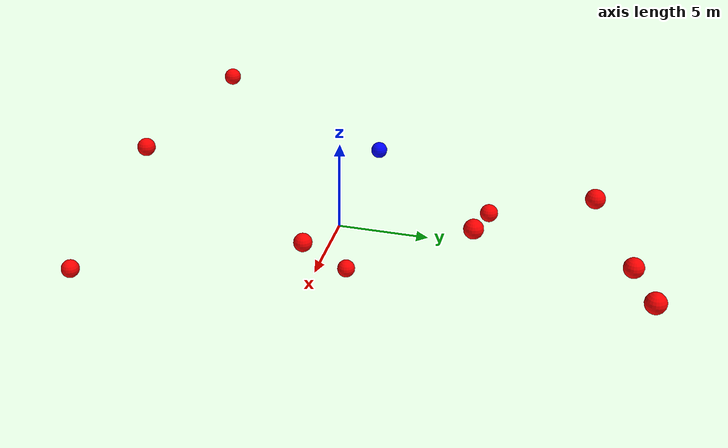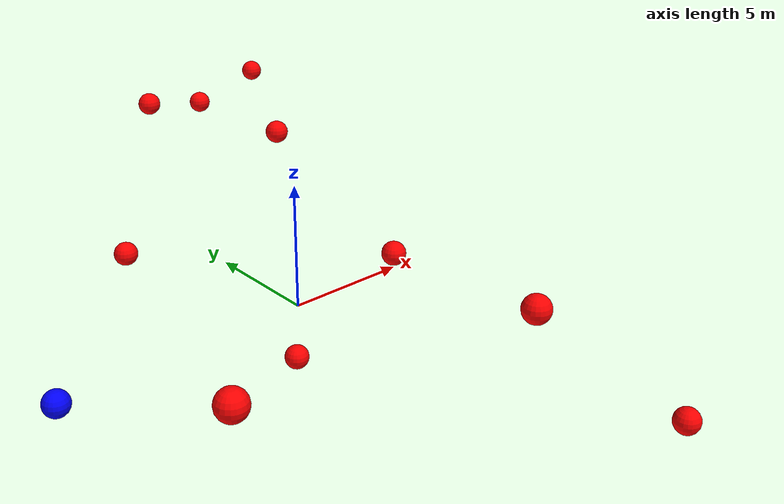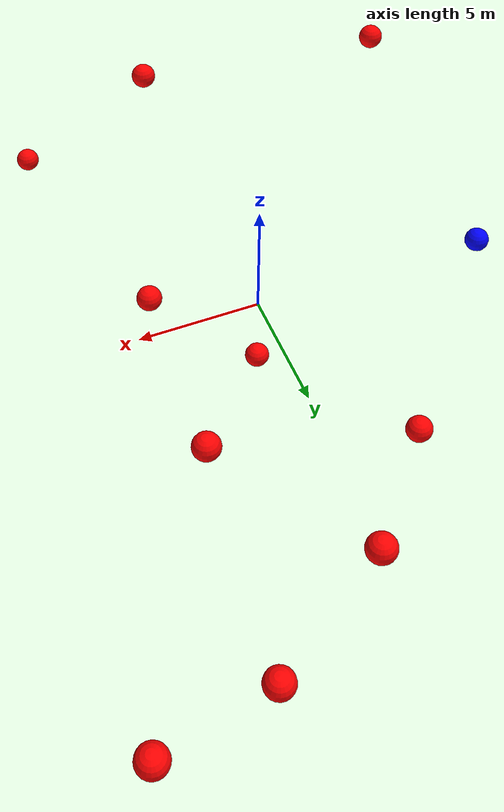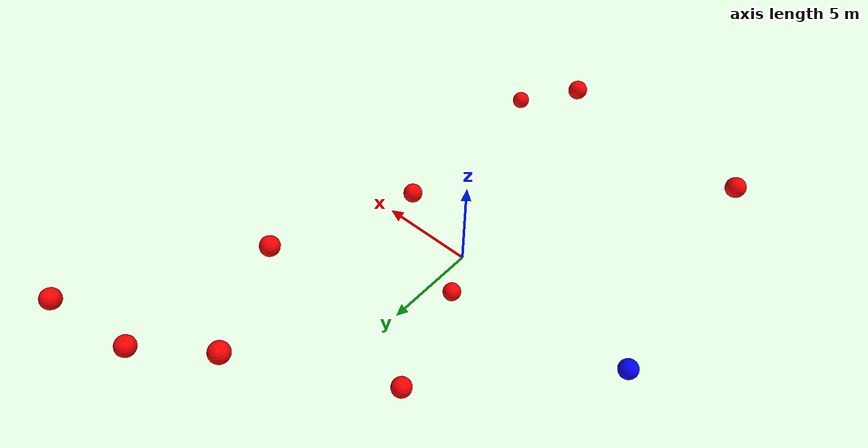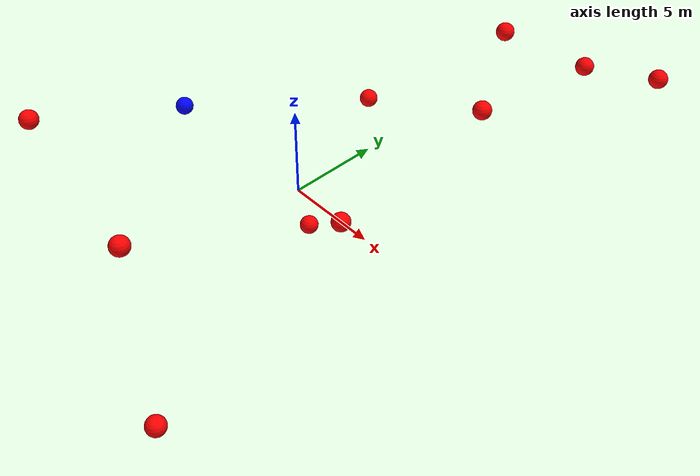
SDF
<?xml version="1.0" ?>
<sdf version="1.8">
    <world name="3d_world">
        <physics name="1ms" type="ode">
            <max_step_size>0.001</max_step_size>
            <real_time_factor>1.0</real_time_factor>
            <real_time_update_rate>1000.0</real_time_update_rate>
        </physics>
        <gravity>0 0 0</gravity>

        <plugin
            filename="gz-sim-physics-system"
            name="gz::sim::v8::systems::Physics">
        </plugin>
        <plugin
            filename="libignition-gazebo-user-commands-system.so"
            name="ignition::gazebo::systems::UserCommands">
        </plugin>
        <plugin
            filename="gz-sim-scene-broadcaster-system"
            name="gz::sim::systems::SceneBroadcaster">
        </plugin>
        <plugin
            filename="gz-sim-sensors-system"
            name="gz::sim::systems::Sensors">
            <render_engine>ogre2</render_engine>
        </plugin>

        <light type="directional" name="sun">
            <cast_shadows>true</cast_shadows>
            <pose>0 0 10 0 0 0</pose>
            <diffuse>0.8 0.8 0.8 1</diffuse>
            <specular>0.2 0.2 0.2 1</specular>
            <attenuation>
                <range>1000</range>
                <constant>0.9</constant>
                <linear>0.01</linear>
                <quadratic>0.001</quadratic>
            </attenuation>
            <direction>-0.5 0.1 -0.9</direction>
        </light>

        <!-- AGENTE -->
        <model name='agente' canonical_link='chassis'>
            <pose relative_to='world'>-10.0 0 0.0 0 0 0</pose>
            <link name='chassis'>
                <pose relative_to='__model__'>0.0 0 0.0 0 0 0</pose>
                <inertial>
                    <mass>1.14395</mass>
                    <inertia>
                        <ixx>0.095329</ixx>
                        <ixy>0</ixy>
                        <ixz>0</ixz>
                        <iyy>0.381317</iyy>
                        <iyz>0</iyz>
                        <izz>0.476646</izz>
                    </inertia>
                </inertial>
                <visual name='visual'>
                    <geometry>
                        <sphere>
                            <radius>0.5</radius>
                        </sphere>
                    </geometry>
                    <material>
                        <ambient>0.0 0.0 1.0 1</ambient>
                        <diffuse>0.0 0.0 1.0 1</diffuse>
                        <specular>0.0 0.0 1.0 1</specular>
                    </material>
                </visual>
                <collision name='collision'>
                    <geometry>
                        <sphere>
                            <radius>0.5</radius>
                        </sphere>
                    </geometry>
                </collision>
                <enable_gravity>false</enable_gravity>
            </link>

            <link name='lidar_link'>
                <pose relative_to='chassis'>0.0 0 0.1 0 0 0</pose>
                <inertial>
                    <mass>0.1</mass>
                    <inertia>
                        <ixx>0.000166667</ixx>
                        <iyy>0.000166667</iyy>
                        <izz>0.000166667</izz>
                    </inertia>
                </inertial>
                <collision name='collision'>
                    <geometry>
                        <cylinder>
                            <radius>0.05</radius>
                            <length>0.1</length>
                        </cylinder>
                    </geometry>
                </collision>
                <visual name='visual'>
                    <geometry>
                        <cylinder>
                            <radius>0.05</radius>
                            <length>0.1</length>
                        </cylinder>
                    </geometry>
                    <material>
                        <ambient>0.0 1.0 0.0 1</ambient>
                        <diffuse>0.0 1.0 0.0 1</diffuse>
                        <specular>0.0 1.0 0.0 1</specular>
                    </material>
                </visual>
                <sensor name="lidar" type="gpu_lidar">
                    <topic>scan</topic>
                    <update_rate>10</update_rate>
                    <lidar>
                        <scan>
                            <horizontal>
                                <samples>5000</samples>
                                <resolution>1</resolution>
                                <min_angle>-3.14159</min_angle>
                                <max_angle>3.14159</max_angle>
                            </horizontal>
                        </scan>
                        <range>
                            <min>0.1</min>
                            <max>10.0</max>
                            <resolution>0.01</resolution>
                        </range>
                    </lidar>
                    <visualize>true</visualize>
                    <always_on>true</always_on>
                    <update_rate>10</update_rate>
                    <pose_frame>lidar</pose_frame>
                </sensor>
                <enable_gravity>false</enable_gravity>
            </link>

            <joint name="lidar_joint" type="fixed">
                <parent>chassis</parent>
                <child>lidar_link</child>
            </joint>

            <plugin
                filename="ignition-gazebo-joint-state-publisher-system"
                name="ignition::gazebo::systems::JointStatePublisher">
            </plugin>
            <plugin
                filename="ignition-gazebo-odometry-publisher-system"
                name="ignition::gazebo::systems::OdometryPublisher">
                <dimensions>3</dimensions>
            </plugin>
            <plugin
                filename="ignition-gazebo-velocity-control-system"
                name="ignition::gazebo::systems::VelocityControl">
                <initial_linear>0.0 0 0</initial_linear>
                <initial_angular>0 0 0.0</initial_angular>
            </plugin>
            <plugin
                filename="libignition-gazebo-pose-publisher-system.so"
                name="ignition::gazebo::systems::PosePublisher">
                <topic>/agente/pose</topic>
                <frame_id>agente</frame_id>
                <update_rate>30</update_rate>
            </plugin>
        </model>

        <!-- OBSTACLE 1 -->
        <model name='obstacle_1' canonical_link='obstacle'>
            <static>false</static>
            <pose relative_to='world'>1.01 -10.82 3.99 0 0 0</pose>
            <link name='obstacle'>
                <pose relative_to='__model__'>0.0 0 0.0 0 0 0</pose>
                <visual name='visual'>
                    <geometry>
                        <sphere>
                            <radius>0.50</radius>
                        </sphere>
                    </geometry>
                    <material>
                        <ambient>1.0 0.0 0.0 1</ambient>
                        <diffuse>1.0 0.0 0.0 1</diffuse>
                        <specular>1.0 0.0 0.0 1</specular>
                    </material>
                </visual>
                <collision name='collision'>
                    <geometry>
                        <sphere>
                            <radius>0.50</radius>
                        </sphere>
                    </geometry>
                </collision>
                <enable_gravity>false</enable_gravity>
            </link>

            <plugin
                filename="ignition-gazebo-velocity-control-system"
                name="ignition::gazebo::systems::VelocityControl">
                <initial_linear>0.33 1.85 -0.68</initial_linear>
                <initial_angular>0 0 0</initial_angular>
            </plugin>

            <plugin
                filename="ignition-gazebo-odometry-publisher-system"
                name="ignition::gazebo::systems::OdometryPublisher">
                <dimensions>3</dimensions>
            </plugin>
        </model>

        <!-- OBSTACLE 2 -->
        <model name='obstacle_2' canonical_link='obstacle'>
            <static>false</static>
            <pose relative_to='world'>5.09 8.04 3.85 0 0 0</pose>
            <link name='obstacle'>
                <pose relative_to='__model__'>0.0 0 0.0 0 0 0</pose>
                <visual name='visual'>
                    <geometry>
                        <sphere>
                            <radius>0.50</radius>
                        </sphere>
                    </geometry>
                    <material>
                        <ambient>1.0 0.0 0.0 1</ambient>
                        <diffuse>1.0 0.0 0.0 1</diffuse>
                        <specular>1.0 0.0 0.0 1</specular>
                    </material>
                </visual>
                <collision name='collision'>
                    <geometry>
                        <sphere>
                            <radius>0.50</radius>
                        </sphere>
                    </geometry>
                </collision>
                <enable_gravity>false</enable_gravity>
            </link>

            <plugin
                filename="ignition-gazebo-velocity-control-system"
                name="ignition::gazebo::systems::VelocityControl">
                <initial_linear>-0.82 -1.65 -0.79</initial_linear>
                <initial_angular>0 0 0</initial_angular>
            </plugin>

            <plugin
                filename="ignition-gazebo-odometry-publisher-system"
                name="ignition::gazebo::systems::OdometryPublisher">
                <dimensions>3</dimensions>
            </plugin>
        </model>

        <!-- OBSTACLE 3 -->
        <model name='obstacle_3' canonical_link='obstacle'>
            <static>false</static>
            <pose relative_to='world'>4.22 -0.86 1.22 0 0 0</pose>
            <link name='obstacle'>
                <pose relative_to='__model__'>0.0 0 0.0 0 0 0</pose>
                <visual name='visual'>
                    <geometry>
                        <sphere>
                            <radius>0.50</radius>
                        </sphere>
                    </geometry>
                    <material>
                        <ambient>1.0 0.0 0.0 1</ambient>
                        <diffuse>1.0 0.0 0.0 1</diffuse>
                        <specular>1.0 0.0 0.0 1</specular>
                    </material>
                </visual>
                <collision name='collision'>
                    <geometry>
                        <sphere>
                            <radius>0.50</radius>
                        </sphere>
                    </geometry>
                </collision>
                <enable_gravity>false</enable_gravity>
            </link>

            <plugin
                filename="ignition-gazebo-velocity-control-system"
                name="ignition::gazebo::systems::VelocityControl">
                <initial_linear>-1.97 0.20 -0.29</initial_linear>
                <initial_angular>0 0 0</initial_angular>
            </plugin>

            <plugin
                filename="ignition-gazebo-odometry-publisher-system"
                name="ignition::gazebo::systems::OdometryPublisher">
                <dimensions>3</dimensions>
            </plugin>
        </model>

        <!-- OBSTACLE 4 -->
        <model name='obstacle_4' canonical_link='obstacle'>
            <static>false</static>
            <pose relative_to='world'>5.80 15.66 3.31 0 0 0</pose>
            <link name='obstacle'>
                <pose relative_to='__model__'>0.0 0 0.0 0 0 0</pose>
                <visual name='visual'>
                    <geometry>
                        <sphere>
                            <radius>0.50</radius>
                        </sphere>
                    </geometry>
                    <material>
                        <ambient>1.0 0.0 0.0 1</ambient>
                        <diffuse>1.0 0.0 0.0 1</diffuse>
                        <specular>1.0 0.0 0.0 1</specular>
                    </material>
                </visual>
                <collision name='collision'>
                    <geometry>
                        <sphere>
                            <radius>0.50</radius>
                        </sphere>
                    </geometry>
                </collision>
                <enable_gravity>false</enable_gravity>
            </link>

            <plugin
                filename="ignition-gazebo-velocity-control-system"
                name="ignition::gazebo::systems::VelocityControl">
                <initial_linear>-0.13 -1.95 -0.41</initial_linear>
                <initial_angular>0 0 0</initial_angular>
            </plugin>

            <plugin
                filename="ignition-gazebo-odometry-publisher-system"
                name="ignition::gazebo::systems::OdometryPublisher">
                <dimensions>3</dimensions>
            </plugin>
        </model>

        <!-- OBSTACLE 5 -->
        <model name='obstacle_5' canonical_link='obstacle'>
            <static>false</static>
            <pose relative_to='world'>9.72 16.57 4.05 0 0 0</pose>
            <link name='obstacle'>
                <pose relative_to='__model__'>0.0 0 0.0 0 0 0</pose>
                <visual name='visual'>
                    <geometry>
                        <sphere>
                            <radius>0.50</radius>
                        </sphere>
                    </geometry>
                    <material>
                        <ambient>1.0 0.0 0.0 1</ambient>
                        <diffuse>1.0 0.0 0.0 1</diffuse>
                        <specular>1.0 0.0 0.0 1</specular>
                    </material>
                </visual>
                <collision name='collision'>
                    <geometry>
                        <sphere>
                            <radius>0.50</radius>
                        </sphere>
                    </geometry>
                </collision>
                <enable_gravity>false</enable_gravity>
            </link>

            <plugin
                filename="ignition-gazebo-velocity-control-system"
                name="ignition::gazebo::systems::VelocityControl">
                <initial_linear>-0.99 -1.69 -0.41</initial_linear>
                <initial_angular>0 0 0</initial_angular>
            </plugin>

            <plugin
                filename="ignition-gazebo-odometry-publisher-system"
                name="ignition::gazebo::systems::OdometryPublisher">
                <dimensions>3</dimensions>
            </plugin>
        </model>

        <!-- OBSTACLE 6 -->
        <model name='obstacle_6' canonical_link='obstacle'>
            <static>false</static>
            <pose relative_to='world'>-3.03 7.91 0.33 0 0 0</pose>
            <link name='obstacle'>
                <pose relative_to='__model__'>0.0 0 0.0 0 0 0</pose>
                <visual name='visual'>
                    <geometry>
                        <sphere>
                            <radius>0.50</radius>
                        </sphere>
                    </geometry>
                    <material>
                        <ambient>1.0 0.0 0.0 1</ambient>
                        <diffuse>1.0 0.0 0.0 1</diffuse>
                        <specular>1.0 0.0 0.0 1</specular>
                    </material>
                </visual>
                <collision name='collision'>
                    <geometry>
                        <sphere>
                            <radius>0.50</radius>
                        </sphere>
                    </geometry>
                </collision>
                <enable_gravity>false</enable_gravity>
            </link>

            <plugin
                filename="ignition-gazebo-velocity-control-system"
                name="ignition::gazebo::systems::VelocityControl">
                <initial_linear>0.76 -1.85 -0.08</initial_linear>
                <initial_angular>0 0 0</initial_angular>
            </plugin>

            <plugin
                filename="ignition-gazebo-odometry-publisher-system"
                name="ignition::gazebo::systems::OdometryPublisher">
                <dimensions>3</dimensions>
            </plugin>
        </model>

        <!-- OBSTACLE 7 -->
        <model name='obstacle_7' canonical_link='obstacle'>
            <static>false</static>
            <pose relative_to='world'>6.27 -13.40 -1.19 0 0 0</pose>
            <link name='obstacle'>
                <pose relative_to='__model__'>0.0 0 0.0 0 0 0</pose>
                <visual name='visual'>
                    <geometry>
                        <sphere>
                            <radius>0.50</radius>
                        </sphere>
                    </geometry>
                    <material>
                        <ambient>1.0 0.0 0.0 1</ambient>
                        <diffuse>1.0 0.0 0.0 1</diffuse>
                        <specular>1.0 0.0 0.0 1</specular>
                    </material>
                </visual>
                <collision name='collision'>
                    <geometry>
                        <sphere>
                            <radius>0.50</radius>
                        </sphere>
                    </geometry>
                </collision>
                <enable_gravity>false</enable_gravity>
            </link>

            <plugin
                filename="ignition-gazebo-velocity-control-system"
                name="ignition::gazebo::systems::VelocityControl">
                <initial_linear>-0.23 1.98 0.18</initial_linear>
                <initial_angular>0 0 0</initial_angular>
            </plugin>

            <plugin
                filename="ignition-gazebo-odometry-publisher-system"
                name="ignition::gazebo::systems::OdometryPublisher">
                <dimensions>3</dimensions>
            </plugin>
        </model>

        <!-- OBSTACLE 8 -->
        <model name='obstacle_8' canonical_link='obstacle'>
            <static>false</static>
            <pose relative_to='world'>-9.16 -9.36 4.36 0 0 0</pose>
            <link name='obstacle'>
                <pose relative_to='__model__'>0.0 0 0.0 0 0 0</pose>
                <visual name='visual'>
                    <geometry>
                        <sphere>
                            <radius>0.50</radius>
                        </sphere>
                    </geometry>
                    <material>
                        <ambient>1.0 0.0 0.0 1</ambient>
                        <diffuse>1.0 0.0 0.0 1</diffuse>
                        <specular>1.0 0.0 0.0 1</specular>
                    </material>
                </visual>
                <collision name='collision'>
                    <geometry>
                        <sphere>
                            <radius>0.50</radius>
                        </sphere>
                    </geometry>
                </collision>
                <enable_gravity>false</enable_gravity>
            </link>

            <plugin
                filename="ignition-gazebo-velocity-control-system"
                name="ignition::gazebo::systems::VelocityControl">
                <initial_linear>1.50 1.20 -0.56</initial_linear>
                <initial_angular>0 0 0</initial_angular>
            </plugin>

            <plugin
                filename="ignition-gazebo-odometry-publisher-system"
                name="ignition::gazebo::systems::OdometryPublisher">
                <dimensions>3</dimensions>
            </plugin>
        </model>

        <!-- OBSTACLE 9 -->
        <model name='obstacle_9' canonical_link='obstacle'>
            <static>false</static>
            <pose relative_to='world'>1.78 13.57 4.55 0 0 0</pose>
            <link name='obstacle'>
                <pose relative_to='__model__'>0.0 0 0.0 0 0 0</pose>
                <visual name='visual'>
                    <geometry>
                        <sphere>
                            <radius>0.50</radius>
                        </sphere>
                    </geometry>
                    <material>
                        <ambient>1.0 0.0 0.0 1</ambient>
                        <diffuse>1.0 0.0 0.0 1</diffuse>
                        <specular>1.0 0.0 0.0 1</specular>
                    </material>
                </visual>
                <collision name='collision'>
                    <geometry>
                        <sphere>
                            <radius>0.50</radius>
                        </sphere>
                    </geometry>
                </collision>
                <enable_gravity>false</enable_gravity>
            </link>

            <plugin
                filename="ignition-gazebo-velocity-control-system"
                name="ignition::gazebo::systems::VelocityControl">
                <initial_linear>0.43 -1.85 -0.62</initial_linear>
                <initial_angular>0 0 0</initial_angular>
            </plugin>

            <plugin
                filename="ignition-gazebo-odometry-publisher-system"
                name="ignition::gazebo::systems::OdometryPublisher">
                <dimensions>3</dimensions>
            </plugin>
        </model>

        <!-- OBSTACLE 10 -->
        <model name='obstacle_10' canonical_link='obstacle'>
            <static>false</static>
            <pose relative_to='world'>0.20 0.46 -2.59 0 0 0</pose>
            <link name='obstacle'>
                <pose relative_to='__model__'>0.0 0 0.0 0 0 0</pose>
                <visual name='visual'>
                    <geometry>
                        <sphere>
                            <radius>0.50</radius>
                        </sphere>
                    </geometry>
                    <material>
                        <ambient>1.0 0.0 0.0 1</ambient>
                        <diffuse>1.0 0.0 0.0 1</diffuse>
                        <specular>1.0 0.0 0.0 1</specular>
                    </material>
                </visual>
                <collision name='collision'>
                    <geometry>
                        <sphere>
                            <radius>0.50</radius>
                        </sphere>
                    </geometry>
                </collision>
                <enable_gravity>false</enable_gravity>
            </link>

            <plugin
                filename="ignition-gazebo-velocity-control-system"
                name="ignition::gazebo::systems::VelocityControl">
                <initial_linear>-0.32 -0.13 0.72</initial_linear>
                <initial_angular>0 0 0</initial_angular>
            </plugin>

            <plugin
                filename="ignition-gazebo-odometry-publisher-system"
                name="ignition::gazebo::systems::OdometryPublisher">
                <dimensions>3</dimensions>
            </plugin>
        </model>

    </world>
</sdf>
